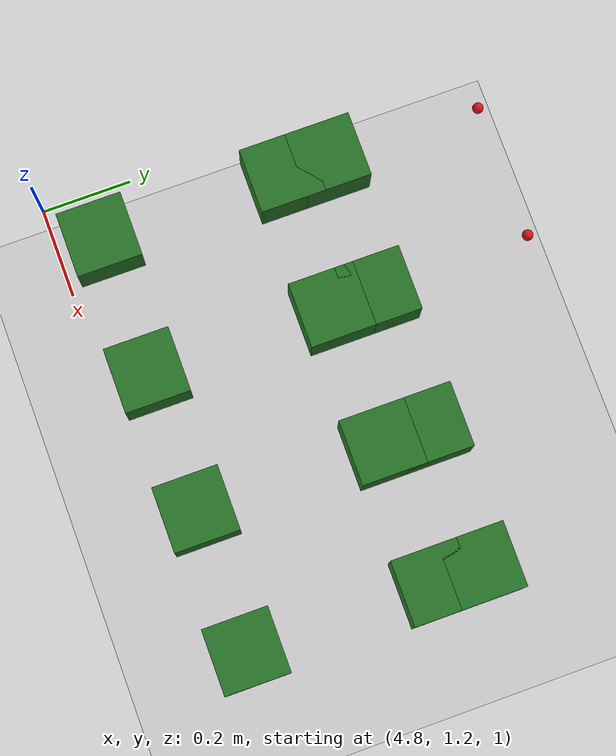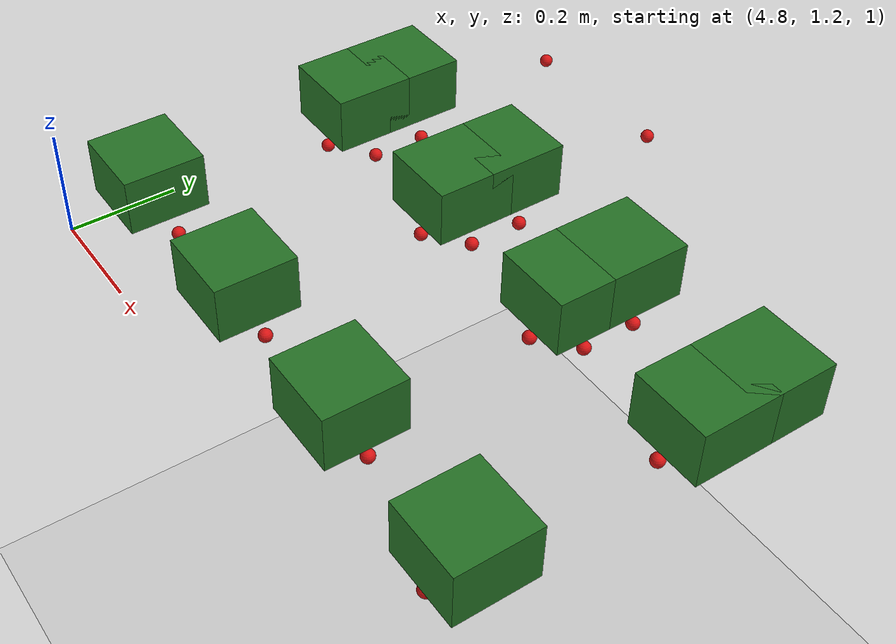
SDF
<sdf version="1.7">
 <world name="irish_polytunnel">
  <include><uri>model://sun</uri></include>
  <include><uri>model://ground_plane</uri></include>
  <model name="row3_L_plant16_foliage">
   <static>true</static>
   <pose>4.950 1.700 1.180 0 0 0</pose>
   <link name="link">
    <visual name="visual">
     <geometry><box><size>0.14 0.14 0.10</size></box></geometry>
     <material><ambient>0.10 0.35 0.10 1</ambient><diffuse>0.15 0.45 0.15 1</diffuse></material>
    </visual>
   </link>
  </model>
  <model name="row3_L_plant16_berry_0">
   <static>true</static>
   <pose>4.920 1.660 1.070 0 0 0</pose>
   <link name="link">
    <visual name="visual">
     <geometry><sphere><radius>0.012</radius></sphere></geometry>
     <material><ambient>0.75 0.05 0.05 1</ambient><diffuse>0.85 0.08 0.08 1</diffuse></material>
    </visual>
   </link>
  </model>
  <model name="row3_L_plant16_berry_1">
   <static>true</static>
   <pose>4.970 1.730 1.050 0 0 0</pose>
   <link name="link">
    <visual name="visual">
     <geometry><sphere><radius>0.012</radius></sphere></geometry>
     <material><ambient>0.75 0.05 0.05 1</ambient><diffuse>0.85 0.08 0.08 1</diffuse></material>
    </visual>
   </link>
  </model>
  <model name="row3_L_plant17_foliage">
   <static>true</static>
   <pose>5.250 1.700 1.180 0 0 0</pose>
   <link name="link">
    <visual name="visual">
     <geometry><box><size>0.14 0.14 0.10</size></box></geometry>
     <material><ambient>0.10 0.35 0.10 1</ambient><diffuse>0.15 0.45 0.15 1</diffuse></material>
    </visual>
   </link>
  </model>
  <model name="row3_L_plant17_berry_0">
   <static>true</static>
   <pose>5.220 1.660 1.070 0 0 0</pose>
   <link name="link">
    <visual name="visual">
     <geometry><sphere><radius>0.012</radius></sphere></geometry>
     <material><ambient>0.75 0.05 0.05 1</ambient><diffuse>0.85 0.08 0.08 1</diffuse></material>
    </visual>
   </link>
  </model>
  <model name="row3_L_plant17_berry_1">
   <static>true</static>
   <pose>5.270 1.730 1.050 0 0 0</pose>
   <link name="link">
    <visual name="visual">
     <geometry><sphere><radius>0.012</radius></sphere></geometry>
     <material><ambient>0.75 0.05 0.05 1</ambient><diffuse>0.85 0.08 0.08 1</diffuse></material>
    </visual>
   </link>
  </model>
  <model name="row3_L_plant18_foliage">
   <static>true</static>
   <pose>5.550 1.700 1.180 0 0 0</pose>
   <link name="link">
    <visual name="visual">
     <geometry><box><size>0.14 0.14 0.10</size></box></geometry>
     <material><ambient>0.10 0.35 0.10 1</ambient><diffuse>0.15 0.45 0.15 1</diffuse></material>
    </visual>
   </link>
  </model>
  <model name="row3_L_plant18_berry_0">
   <static>true</static>
   <pose>5.520 1.660 1.070 0 0 0</pose>
   <link name="link">
    <visual name="visual">
     <geometry><sphere><radius>0.012</radius></sphere></geometry>
     <material><ambient>0.75 0.05 0.05 1</ambient><diffuse>0.85 0.08 0.08 1</diffuse></material>
    </visual>
   </link>
  </model>
  <model name="row3_L_plant18_berry_1">
   <static>true</static>
   <pose>5.570 1.730 1.050 0 0 0</pose>
   <link name="link">
    <visual name="visual">
     <geometry><sphere><radius>0.012</radius></sphere></geometry>
     <material><ambient>0.75 0.05 0.05 1</ambient><diffuse>0.85 0.08 0.08 1</diffuse></material>
    </visual>
   </link>
  </model>
  <model name="row3_L_plant19_foliage">
   <static>true</static>
   <pose>5.850 1.700 1.180 0 0 0</pose>
   <link name="link">
    <visual name="visual">
     <geometry><box><size>0.14 0.14 0.10</size></box></geometry>
     <material><ambient>0.10 0.35 0.10 1</ambient><diffuse>0.15 0.45 0.15 1</diffuse></material>
    </visual>
   </link>
  </model>
  <model name="row3_L_plant19_berry_0">
   <static>true</static>
   <pose>5.820 1.660 1.070 0 0 0</pose>
   <link name="link">
    <visual name="visual">
     <geometry><sphere><radius>0.012</radius></sphere></geometry>
     <material><ambient>0.75 0.05 0.05 1</ambient><diffuse>0.85 0.08 0.08 1</diffuse></material>
    </visual>
   </link>
  </model>
  <model name="row3_R_plant16_foliage">
   <static>true</static>
   <pose>4.950 1.300 1.180 0 0 0</pose>
   <link name="link">
    <visual name="visual">
     <geometry><box><size>0.14 0.14 0.10</size></box></geometry>
     <material><ambient>0.10 0.35 0.10 1</ambient><diffuse>0.15 0.45 0.15 1</diffuse></material>
    </visual>
   </link>
  </model>
  <model name="row3_R_plant16_berry_1">
   <static>true</static>
   <pose>4.970 1.330 1.050 0 0 0</pose>
   <link name="link">
    <visual name="visual">
     <geometry><sphere><radius>0.012</radius></sphere></geometry>
     <material><ambient>0.75 0.05 0.05 1</ambient><diffuse>0.85 0.08 0.08 1</diffuse></material>
    </visual>
   </link>
  </model>
  <model name="row3_R_plant17_foliage">
   <static>true</static>
   <pose>5.250 1.300 1.180 0 0 0</pose>
   <link name="link">
    <visual name="visual">
     <geometry><box><size>0.14 0.14 0.10</size></box></geometry>
     <material><ambient>0.10 0.35 0.10 1</ambient><diffuse>0.15 0.45 0.15 1</diffuse></material>
    </visual>
   </link>
  </model>
  <model name="row3_R_plant17_berry_1">
   <static>true</static>
   <pose>5.270 1.330 1.050 0 0 0</pose>
   <link name="link">
    <visual name="visual">
     <geometry><sphere><radius>0.012</radius></sphere></geometry>
     <material><ambient>0.75 0.05 0.05 1</ambient><diffuse>0.85 0.08 0.08 1</diffuse></material>
    </visual>
   </link>
  </model>
  <model name="row3_R_plant18_foliage">
   <static>true</static>
   <pose>5.550 1.300 1.180 0 0 0</pose>
   <link name="link">
    <visual name="visual">
     <geometry><box><size>0.14 0.14 0.10</size></box></geometry>
     <material><ambient>0.10 0.35 0.10 1</ambient><diffuse>0.15 0.45 0.15 1</diffuse></material>
    </visual>
   </link>
  </model>
  <model name="row3_R_plant18_berry_1">
   <static>true</static>
   <pose>5.570 1.330 1.050 0 0 0</pose>
   <link name="link">
    <visual name="visual">
     <geometry><sphere><radius>0.012</radius></sphere></geometry>
     <material><ambient>0.75 0.05 0.05 1</ambient><diffuse>0.85 0.08 0.08 1</diffuse></material>
    </visual>
   </link>
  </model>
  <model name="row3_R_plant19_foliage">
   <static>true</static>
   <pose>5.850 1.300 1.180 0 0 0</pose>
   <link name="link">
    <visual name="visual">
     <geometry><box><size>0.14 0.14 0.10</size></box></geometry>
     <material><ambient>0.10 0.35 0.10 1</ambient><diffuse>0.15 0.45 0.15 1</diffuse></material>
    </visual>
   </link>
  </model>
  <model name="row3_R_plant19_berry_0">
   <static>true</static>
   <pose>5.820 1.260 1.070 0 0 0</pose>
   <link name="link">
    <visual name="visual">
     <geometry><sphere><radius>0.012</radius></sphere></geometry>
     <material><ambient>0.75 0.05 0.05 1</ambient><diffuse>0.85 0.08 0.08 1</diffuse></material>
    </visual>
   </link>
  </model>
  <model name="row4_L_plant16_berry_0">
   <static>true</static>
   <pose>4.920 2.160 1.070 0 0 0</pose>
   <link name="link">
    <visual name="visual">
     <geometry><sphere><radius>0.012</radius></sphere></geometry>
     <material><ambient>0.75 0.05 0.05 1</ambient><diffuse>0.85 0.08 0.08 1</diffuse></material>
    </visual>
   </link>
  </model>
  <model name="row4_L_plant17_berry_0">
   <static>true</static>
   <pose>5.220 2.160 1.070 0 0 0</pose>
   <link name="link">
    <visual name="visual">
     <geometry><sphere><radius>0.012</radius></sphere></geometry>
     <material><ambient>0.75 0.05 0.05 1</ambient><diffuse>0.85 0.08 0.08 1</diffuse></material>
    </visual>
   </link>
  </model>
  <model name="row4_R_plant16_foliage">
   <static>true</static>
   <pose>4.950 1.800 1.180 0 0 0</pose>
   <link name="link">
    <visual name="visual">
     <geometry><box><size>0.14 0.14 0.10</size></box></geometry>
     <material><ambient>0.10 0.35 0.10 1</ambient><diffuse>0.15 0.45 0.15 1</diffuse></material>
    </visual>
   </link>
  </model>
  <model name="row4_R_plant16_berry_0">
   <static>true</static>
   <pose>4.920 1.760 1.070 0 0 0</pose>
   <link name="link">
    <visual name="visual">
     <geometry><sphere><radius>0.012</radius></sphere></geometry>
     <material><ambient>0.75 0.05 0.05 1</ambient><diffuse>0.85 0.08 0.08 1</diffuse></material>
    </visual>
   </link>
  </model>
  <model name="row4_R_plant16_berry_1">
   <static>true</static>
   <pose>4.970 1.830 1.050 0 0 0</pose>
   <link name="link">
    <visual name="visual">
     <geometry><sphere><radius>0.012</radius></sphere></geometry>
     <material><ambient>0.75 0.05 0.05 1</ambient><diffuse>0.85 0.08 0.08 1</diffuse></material>
    </visual>
   </link>
  </model>
  <model name="row4_R_plant17_foliage">
   <static>true</static>
   <pose>5.250 1.800 1.180 0 0 0</pose>
   <link name="link">
    <visual name="visual">
     <geometry><box><size>0.14 0.14 0.10</size></box></geometry>
     <material><ambient>0.10 0.35 0.10 1</ambient><diffuse>0.15 0.45 0.15 1</diffuse></material>
    </visual>
   </link>
  </model>
  <model name="row4_R_plant17_berry_0">
   <static>true</static>
   <pose>5.220 1.760 1.070 0 0 0</pose>
   <link name="link">
    <visual name="visual">
     <geometry><sphere><radius>0.012</radius></sphere></geometry>
     <material><ambient>0.75 0.05 0.05 1</ambient><diffuse>0.85 0.08 0.08 1</diffuse></material>
    </visual>
   </link>
  </model>
  <model name="row4_R_plant17_berry_1">
   <static>true</static>
   <pose>5.270 1.830 1.050 0 0 0</pose>
   <link name="link">
    <visual name="visual">
     <geometry><sphere><radius>0.012</radius></sphere></geometry>
     <material><ambient>0.75 0.05 0.05 1</ambient><diffuse>0.85 0.08 0.08 1</diffuse></material>
    </visual>
   </link>
  </model>
  <model name="row4_R_plant18_foliage">
   <static>true</static>
   <pose>5.550 1.800 1.180 0 0 0</pose>
   <link name="link">
    <visual name="visual">
     <geometry><box><size>0.14 0.14 0.10</size></box></geometry>
     <material><ambient>0.10 0.35 0.10 1</ambient><diffuse>0.15 0.45 0.15 1</diffuse></material>
    </visual>
   </link>
  </model>
  <model name="row4_R_plant18_berry_0">
   <static>true</static>
   <pose>5.520 1.760 1.070 0 0 0</pose>
   <link name="link">
    <visual name="visual">
     <geometry><sphere><radius>0.012</radius></sphere></geometry>
     <material><ambient>0.75 0.05 0.05 1</ambient><diffuse>0.85 0.08 0.08 1</diffuse></material>
    </visual>
   </link>
  </model>
  <model name="row4_R_plant18_berry_1">
   <static>true</static>
   <pose>5.570 1.830 1.050 0 0 0</pose>
   <link name="link">
    <visual name="visual">
     <geometry><sphere><radius>0.012</radius></sphere></geometry>
     <material><ambient>0.75 0.05 0.05 1</ambient><diffuse>0.85 0.08 0.08 1</diffuse></material>
    </visual>
   </link>
  </model>
  <model name="row4_R_plant19_foliage">
   <static>true</static>
   <pose>5.850 1.800 1.180 0 0 0</pose>
   <link name="link">
    <visual name="visual">
     <geometry><box><size>0.14 0.14 0.10</size></box></geometry>
     <material><ambient>0.10 0.35 0.10 1</ambient><diffuse>0.15 0.45 0.15 1</diffuse></material>
    </visual>
   </link>
  </model>
  <model name="row4_R_plant19_berry_0">
   <static>true</static>
   <pose>5.820 1.760 1.070 0 0 0</pose>
   <link name="link">
    <visual name="visual">
     <geometry><sphere><radius>0.012</radius></sphere></geometry>
     <material><ambient>0.75 0.05 0.05 1</ambient><diffuse>0.85 0.08 0.08 1</diffuse></material>
    </visual>
   </link>
  </model>
 </world>
</sdf>
